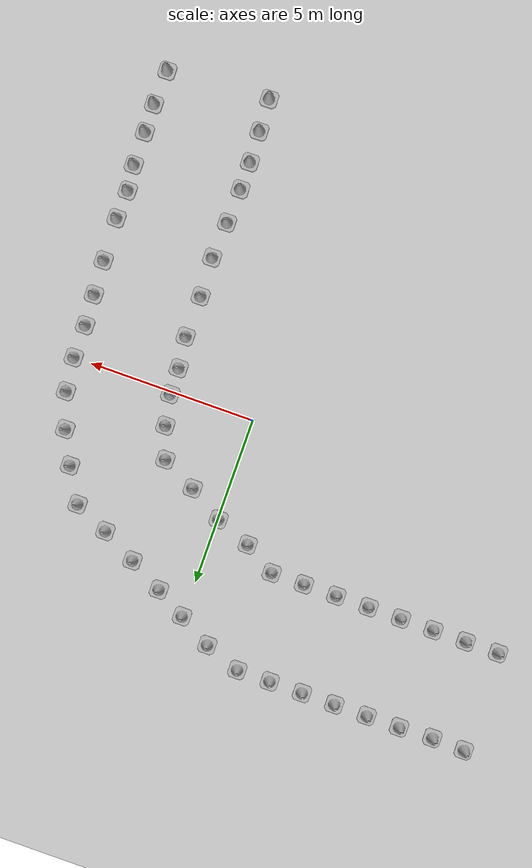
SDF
<sdf version="1.7">
 <world name="empty">
  <plugin name="gazebo_ros_properties" filename="libgazebo_ros_properties.so">
   <ros><namespace>/erp42</namespace></ros>
  </plugin>
  <model name="ground_plane">
   <static>1</static>
   <link name="link">
    <collision name="collision">
     <geometry><plane><normal>0 0 1</normal><size>100 100</size></plane></geometry>
     <surface>
      <contact><collide_bitmask>65535</collide_bitmask></contact>
      <friction><ode><mu>100</mu><mu2>50</mu2></ode></friction>
     </surface>
    </collision>
    <visual name="visual">
     <cast_shadows>0</cast_shadows>
     <geometry><plane><normal>0 0 1</normal><size>100 100</size></plane></geometry>
     <material>
      <script><uri>file://media/materials/scripts/gazebo.material</uri><name>Gazebo/Grey</name></script>
     </material>
    </visual>
   </link>
  </model>
  <light name="sun" type="directional">
   <pose>0 0 10 0 -0 0</pose>
   <diffuse>0.8 0.8 0.8 1</diffuse>
   <specular>0.2 0.2 0.2 1</specular>
   <attenuation>
    <range>1000</range>
    <constant>0.9</constant>
    <linear>0.01</linear>
    <quadratic>0.001</quadratic>
   </attenuation>
   <direction>-0.5 0.1 -0.9</direction>
   <spot><inner_angle>0</inner_angle><outer_angle>0</outer_angle><falloff>0</falloff></spot>
  </light>
  <scene><ambient>0.6 0.6 0.6 1</ambient><shadows>0</shadows><background>0.7 0.7 0.7 1</background></scene>
  <physics name="default_physics" type="ode">
   <max_step_size>0.001</max_step_size>
   <real_time_update_rate>1000</real_time_update_rate>
   <real_time_factor>1</real_time_factor>
  </physics>
  <spherical_coordinates>
   <surface_model>EARTH_WGS84</surface_model>
   <latitude_deg>37.239</latitude_deg>
   <longitude_deg>126.773</longitude_deg>
   <elevation>0</elevation>
   <heading_deg>180</heading_deg>
  </spherical_coordinates>
  <gravity>0 0 -9.8</gravity>
  <magnetic_field>6e-06 2.3e-05 -4.2e-05</magnetic_field>
  <atmosphere type="adiabatic"/>
  <audio><device>default</device></audio>
  <model name="Construction Cone">
   <link name="link">
    <collision name="collision">
     <geometry>
      <mesh><scale>10 10 10</scale><uri>model://construction_cone/meshes/construction_cone.dae</uri></mesh>
     </geometry>
    </collision>
    <visual name="visual">
     <geometry>
      <mesh><scale>10 10 10</scale><uri>model://construction_cone/meshes/construction_cone.dae</uri></mesh>
     </geometry>
    </visual>
    <inertial>
     <inertia><ixx>1</ixx><ixy>0</ixy><ixz>0</ixz><iyy>1</iyy><iyz>0</iyz><izz>1</izz></inertia>
     <mass>1</mass>
    </inertial>
   </link>
   <pose>-9 7 0 -0 -0 -0</pose>
  </model>
  <model name="Construction Cone_clone">
   <link name="link">
    <collision name="collision">
     <geometry>
      <mesh><scale>10 10 10</scale><uri>model://construction_cone/meshes/construction_cone.dae</uri></mesh>
     </geometry>
    </collision>
    <visual name="visual">
     <geometry>
      <mesh><scale>10 10 10</scale><uri>model://construction_cone/meshes/construction_cone.dae</uri></mesh>
     </geometry>
    </visual>
    <inertial>
     <inertia><ixx>1</ixx><ixy>0</ixy><ixz>0</ixz><iyy>1</iyy><iyz>0</iyz><izz>1</izz></inertia>
     <mass>1</mass>
    </inertial>
   </link>
   <pose>-9 4 -0 0 -0 0</pose>
  </model>
  <model name="Construction Cone_clone_0">
   <link name="link">
    <collision name="collision">
     <geometry>
      <mesh><scale>10 10 10</scale><uri>model://construction_cone/meshes/construction_cone.dae</uri></mesh>
     </geometry>
    </collision>
    <visual name="visual">
     <geometry>
      <mesh><scale>10 10 10</scale><uri>model://construction_cone/meshes/construction_cone.dae</uri></mesh>
     </geometry>
    </visual>
    <inertial>
     <inertia><ixx>1</ixx><ixy>0</ixy><ixz>0</ixz><iyy>1</iyy><iyz>0</iyz><izz>1</izz></inertia>
     <mass>1</mass>
    </inertial>
   </link>
   <pose>-8.01544 6.96952 -0 0 -0 0</pose>
  </model>
  <model name="Construction Cone_clone_0_clone">
   <link name="link">
    <collision name="collision">
     <geometry>
      <mesh><scale>10 10 10</scale><uri>model://construction_cone/meshes/construction_cone.dae</uri></mesh>
     </geometry>
    </collision>
    <visual name="visual">
     <geometry>
      <mesh><scale>10 10 10</scale><uri>model://construction_cone/meshes/construction_cone.dae</uri></mesh>
     </geometry>
    </visual>
    <inertial>
     <inertia><ixx>1</ixx><ixy>0</ixy><ixz>0</ixz><iyy>1</iyy><iyz>0</iyz><izz>1</izz></inertia>
     <mass>1</mass>
    </inertial>
   </link>
   <pose>-8 4 -0 0 -0 0</pose>
  </model>
  <model name="Construction Cone_clone_0_clone_0">
   <link name="link">
    <collision name="collision">
     <geometry>
      <mesh><scale>10 10 10</scale><uri>model://construction_cone/meshes/construction_cone.dae</uri></mesh>
     </geometry>
    </collision>
    <visual name="visual">
     <geometry>
      <mesh><scale>10 10 10</scale><uri>model://construction_cone/meshes/construction_cone.dae</uri></mesh>
     </geometry>
    </visual>
    <inertial>
     <inertia><ixx>1</ixx><ixy>0</ixy><ixz>0</ixz><iyy>1</iyy><iyz>0</iyz><izz>1</izz></inertia>
     <mass>1</mass>
    </inertial>
   </link>
   <pose>-7 4 -0 0 -0 0</pose>
  </model>
  <model name="Construction Cone_clone_0_clone_1">
   <link name="link">
    <collision name="collision">
     <geometry>
      <mesh><scale>10 10 10</scale><uri>model://construction_cone/meshes/construction_cone.dae</uri></mesh>
     </geometry>
    </collision>
    <visual name="visual">
     <geometry>
      <mesh><scale>10 10 10</scale><uri>model://construction_cone/meshes/construction_cone.dae</uri></mesh>
     </geometry>
    </visual>
    <inertial>
     <inertia><ixx>1</ixx><ixy>0</ixy><ixz>0</ixz><iyy>1</iyy><iyz>0</iyz><izz>1</izz></inertia>
     <mass>1</mass>
    </inertial>
   </link>
   <pose>-6 4 -0 1e-06 -0 0</pose>
  </model>
  <model name="Construction Cone_clone_0_clone_2">
   <link name="link">
    <collision name="collision">
     <geometry>
      <mesh><scale>10 10 10</scale><uri>model://construction_cone/meshes/construction_cone.dae</uri></mesh>
     </geometry>
    </collision>
    <visual name="visual">
     <geometry>
      <mesh><scale>10 10 10</scale><uri>model://construction_cone/meshes/construction_cone.dae</uri></mesh>
     </geometry>
    </visual>
    <inertial>
     <inertia><ixx>1</ixx><ixy>0</ixy><ixz>0</ixz><iyy>1</iyy><iyz>0</iyz><izz>1</izz></inertia>
     <mass>1</mass>
    </inertial>
   </link>
   <pose>-5 4 -0 0 -0 0</pose>
  </model>
  <model name="Construction Cone_clone_0_clone_3">
   <link name="link">
    <collision name="collision">
     <geometry>
      <mesh><scale>10 10 10</scale><uri>model://construction_cone/meshes/construction_cone.dae</uri></mesh>
     </geometry>
    </collision>
    <visual name="visual">
     <geometry>
      <mesh><scale>10 10 10</scale><uri>model://construction_cone/meshes/construction_cone.dae</uri></mesh>
     </geometry>
    </visual>
    <inertial>
     <inertia><ixx>1</ixx><ixy>0</ixy><ixz>0</ixz><iyy>1</iyy><iyz>0</iyz><izz>1</izz></inertia>
     <mass>1</mass>
    </inertial>
   </link>
   <pose>-4 4 -0 0 -0 0</pose>
  </model>
  <model name="Construction Cone_clone_0_clone_4">
   <link name="link">
    <collision name="collision">
     <geometry>
      <mesh><scale>10 10 10</scale><uri>model://construction_cone/meshes/construction_cone.dae</uri></mesh>
     </geometry>
    </collision>
    <visual name="visual">
     <geometry>
      <mesh><scale>10 10 10</scale><uri>model://construction_cone/meshes/construction_cone.dae</uri></mesh>
     </geometry>
    </visual>
    <inertial>
     <inertia><ixx>1</ixx><ixy>0</ixy><ixz>0</ixz><iyy>1</iyy><iyz>0</iyz><izz>1</izz></inertia>
     <mass>1</mass>
    </inertial>
   </link>
   <pose>-3 4 -6e-06 -4e-06 0 0</pose>
  </model>
  <model name="Construction Cone_clone_0_clone_5">
   <link name="link">
    <collision name="collision">
     <geometry>
      <mesh><scale>10 10 10</scale><uri>model://construction_cone/meshes/construction_cone.dae</uri></mesh>
     </geometry>
    </collision>
    <visual name="visual">
     <geometry>
      <mesh><scale>10 10 10</scale><uri>model://construction_cone/meshes/construction_cone.dae</uri></mesh>
     </geometry>
    </visual>
    <inertial>
     <inertia><ixx>1</ixx><ixy>0</ixy><ixz>0</ixz><iyy>1</iyy><iyz>0</iyz><izz>1</izz></inertia>
     <mass>1</mass>
    </inertial>
   </link>
   <pose>-2 4 -0 0 -0 0</pose>
  </model>
  <model name="Construction Cone_clone_0_clone_6">
   <link name="link">
    <collision name="collision">
     <geometry>
      <mesh><scale>10 10 10</scale><uri>model://construction_cone/meshes/construction_cone.dae</uri></mesh>
     </geometry>
    </collision>
    <visual name="visual">
     <geometry>
      <mesh><scale>10 10 10</scale><uri>model://construction_cone/meshes/construction_cone.dae</uri></mesh>
     </geometry>
    </visual>
    <inertial>
     <inertia><ixx>1</ixx><ixy>0</ixy><ixz>0</ixz><iyy>1</iyy><iyz>0</iyz><izz>1</izz></inertia>
     <mass>1</mass>
    </inertial>
   </link>
   <pose>-7 7 -0 0 -0 0</pose>
  </model>
  <model name="Construction Cone_clone_0_clone_7">
   <link name="link">
    <collision name="collision">
     <geometry>
      <mesh><scale>10 10 10</scale><uri>model://construction_cone/meshes/construction_cone.dae</uri></mesh>
     </geometry>
    </collision>
    <visual name="visual">
     <geometry>
      <mesh><scale>10 10 10</scale><uri>model://construction_cone/meshes/construction_cone.dae</uri></mesh>
     </geometry>
    </visual>
    <inertial>
     <inertia><ixx>1</ixx><ixy>0</ixy><ixz>0</ixz><iyy>1</iyy><iyz>0</iyz><izz>1</izz></inertia>
     <mass>1</mass>
    </inertial>
   </link>
   <pose>-6 7 -0 1e-06 -0 0</pose>
  </model>
  <model name="Construction Cone_clone_0_clone_8">
   <link name="link">
    <collision name="collision">
     <geometry>
      <mesh><scale>10 10 10</scale><uri>model://construction_cone/meshes/construction_cone.dae</uri></mesh>
     </geometry>
    </collision>
    <visual name="visual">
     <geometry>
      <mesh><scale>10 10 10</scale><uri>model://construction_cone/meshes/construction_cone.dae</uri></mesh>
     </geometry>
    </visual>
    <inertial>
     <inertia><ixx>1</ixx><ixy>0</ixy><ixz>0</ixz><iyy>1</iyy><iyz>0</iyz><izz>1</izz></inertia>
     <mass>1</mass>
    </inertial>
   </link>
   <pose>-5 7 -0 0 -0 0</pose>
  </model>
  <model name="Construction Cone_clone_0_clone_9">
   <link name="link">
    <collision name="collision">
     <geometry>
      <mesh><scale>10 10 10</scale><uri>model://construction_cone/meshes/construction_cone.dae</uri></mesh>
     </geometry>
    </collision>
    <visual name="visual">
     <geometry>
      <mesh><scale>10 10 10</scale><uri>model://construction_cone/meshes/construction_cone.dae</uri></mesh>
     </geometry>
    </visual>
    <inertial>
     <inertia><ixx>1</ixx><ixy>0</ixy><ixz>0</ixz><iyy>1</iyy><iyz>0</iyz><izz>1</izz></inertia>
     <mass>1</mass>
    </inertial>
   </link>
   <pose>-4 7 -1e-05 -1e-06 0 0</pose>
  </model>
  <model name="Construction Cone_clone_0_clone_10">
   <link name="link">
    <collision name="collision">
     <geometry>
      <mesh><scale>10 10 10</scale><uri>model://construction_cone/meshes/construction_cone.dae</uri></mesh>
     </geometry>
    </collision>
    <visual name="visual">
     <geometry>
      <mesh><scale>10 10 10</scale><uri>model://construction_cone/meshes/construction_cone.dae</uri></mesh>
     </geometry>
    </visual>
    <inertial>
     <inertia><ixx>1</ixx><ixy>0</ixy><ixz>0</ixz><iyy>1</iyy><iyz>0</iyz><izz>1</izz></inertia>
     <mass>1</mass>
    </inertial>
   </link>
   <pose>-3 7 -0 0 -0 0</pose>
  </model>
  <model name="Construction Cone_clone_0_clone_11">
   <link name="link">
    <collision name="collision">
     <geometry>
      <mesh><scale>10 10 10</scale><uri>model://construction_cone/meshes/construction_cone.dae</uri></mesh>
     </geometry>
    </collision>
    <visual name="visual">
     <geometry>
      <mesh><scale>10 10 10</scale><uri>model://construction_cone/meshes/construction_cone.dae</uri></mesh>
     </geometry>
    </visual>
    <inertial>
     <inertia><ixx>1</ixx><ixy>0</ixy><ixz>0</ixz><iyy>1</iyy><iyz>0</iyz><izz>1</izz></inertia>
     <mass>1</mass>
    </inertial>
   </link>
   <pose>-2 7 -0 0 -0 0</pose>
  </model>
  <model name="Construction Cone_clone_0_clone_11_clone">
   <link name="link">
    <collision name="collision">
     <geometry>
      <mesh><scale>10 10 10</scale><uri>model://construction_cone/meshes/construction_cone.dae</uri></mesh>
     </geometry>
    </collision>
    <visual name="visual">
     <geometry>
      <mesh><scale>10 10 10</scale><uri>model://construction_cone/meshes/construction_cone.dae</uri></mesh>
     </geometry>
    </visual>
    <inertial>
     <inertia><ixx>1</ixx><ixy>0</ixy><ixz>0</ixz><iyy>1</iyy><iyz>0</iyz><izz>1</izz></inertia>
     <mass>1</mass>
    </inertial>
   </link>
   <pose>-0.933051 6.60667 -1e-05 -1e-06 0 0</pose>
  </model>
  <model name="Construction Cone_clone_0_clone_11_clone_0">
   <link name="link">
    <collision name="collision">
     <geometry>
      <mesh><scale>10 10 10</scale><uri>model://construction_cone/meshes/construction_cone.dae</uri></mesh>
     </geometry>
    </collision>
    <visual name="visual">
     <geometry>
      <mesh><scale>10 10 10</scale><uri>model://construction_cone/meshes/construction_cone.dae</uri></mesh>
     </geometry>
    </visual>
    <inertial>
     <inertia><ixx>1</ixx><ixy>0</ixy><ixz>0</ixz><iyy>1</iyy><iyz>0</iyz><izz>1</izz></inertia>
     <mass>1</mass>
    </inertial>
   </link>
   <pose>0.039005 6.06231 -0 0 -0 0</pose>
  </model>
  <model name="Construction Cone_clone_0_clone_11_clone_1">
   <link name="link">
    <collision name="collision">
     <geometry>
      <mesh><scale>10 10 10</scale><uri>model://construction_cone/meshes/construction_cone.dae</uri></mesh>
     </geometry>
    </collision>
    <visual name="visual">
     <geometry>
      <mesh><scale>10 10 10</scale><uri>model://construction_cone/meshes/construction_cone.dae</uri></mesh>
     </geometry>
    </visual>
    <inertial>
     <inertia><ixx>1</ixx><ixy>0</ixy><ixz>0</ixz><iyy>1</iyy><iyz>0</iyz><izz>1</izz></inertia>
     <mass>1</mass>
    </inertial>
   </link>
   <pose>0.933307 5.55684 -0 0 -0 0</pose>
  </model>
  <model name="Construction Cone_clone_0_clone_11_clone_2">
   <link name="link">
    <collision name="collision">
     <geometry>
      <mesh><scale>10 10 10</scale><uri>model://construction_cone/meshes/construction_cone.dae</uri></mesh>
     </geometry>
    </collision>
    <visual name="visual">
     <geometry>
      <mesh><scale>10 10 10</scale><uri>model://construction_cone/meshes/construction_cone.dae</uri></mesh>
     </geometry>
    </visual>
    <inertial>
     <inertia><ixx>1</ixx><ixy>0</ixy><ixz>0</ixz><iyy>1</iyy><iyz>0</iyz><izz>1</izz></inertia>
     <mass>1</mass>
    </inertial>
   </link>
   <pose>1.94424 5.01249 -0 0 -0 0</pose>
  </model>
  <model name="Construction Cone_clone_0_clone_11_clone_3">
   <link name="link">
    <collision name="collision">
     <geometry>
      <mesh><scale>10 10 10</scale><uri>model://construction_cone/meshes/construction_cone.dae</uri></mesh>
     </geometry>
    </collision>
    <visual name="visual">
     <geometry>
      <mesh><scale>10 10 10</scale><uri>model://construction_cone/meshes/construction_cone.dae</uri></mesh>
     </geometry>
    </visual>
    <inertial>
     <inertia><ixx>1</ixx><ixy>0</ixy><ixz>0</ixz><iyy>1</iyy><iyz>0</iyz><izz>1</izz></inertia>
     <mass>1</mass>
    </inertial>
   </link>
   <pose>2.97463 4.46814 -0 0 -1e-06 0</pose>
  </model>
  <model name="Construction Cone_clone_0_clone_11_clone_4">
   <link name="link">
    <collision name="collision">
     <geometry>
      <mesh><scale>10 10 10</scale><uri>model://construction_cone/meshes/construction_cone.dae</uri></mesh>
     </geometry>
    </collision>
    <visual name="visual">
     <geometry>
      <mesh><scale>10 10 10</scale><uri>model://construction_cone/meshes/construction_cone.dae</uri></mesh>
     </geometry>
    </visual>
    <inertial>
     <inertia><ixx>1</ixx><ixy>0</ixy><ixz>0</ixz><iyy>1</iyy><iyz>0</iyz><izz>1</izz></inertia>
     <mass>1</mass>
    </inertial>
   </link>
   <pose>4 4 -6e-06 5e-06 1e-06 0</pose>
  </model>
  <model name="Construction Cone_clone_0_clone_11_clone_5">
   <link name="link">
    <collision name="collision">
     <geometry>
      <mesh><scale>10 10 10</scale><uri>model://construction_cone/meshes/construction_cone.dae</uri></mesh>
     </geometry>
    </collision>
    <visual name="visual">
     <geometry>
      <mesh><scale>10 10 10</scale><uri>model://construction_cone/meshes/construction_cone.dae</uri></mesh>
     </geometry>
    </visual>
    <inertial>
     <inertia><ixx>1</ixx><ixy>0</ixy><ixz>0</ixz><iyy>1</iyy><iyz>0</iyz><izz>1</izz></inertia>
     <mass>1</mass>
    </inertial>
   </link>
   <pose>4.58784 3.00927 -0 0 -0 0</pose>
  </model>
  <model name="Construction Cone_clone_0_clone_11_clone_6">
   <link name="link">
    <collision name="collision">
     <geometry>
      <mesh><scale>10 10 10</scale><uri>model://construction_cone/meshes/construction_cone.dae</uri></mesh>
     </geometry>
    </collision>
    <visual name="visual">
     <geometry>
      <mesh><scale>10 10 10</scale><uri>model://construction_cone/meshes/construction_cone.dae</uri></mesh>
     </geometry>
    </visual>
    <inertial>
     <inertia><ixx>1</ixx><ixy>0</ixy><ixz>0</ixz><iyy>1</iyy><iyz>0</iyz><izz>1</izz></inertia>
     <mass>1</mass>
    </inertial>
   </link>
   <pose>5.07388 2.05665 -0 1e-06 -0 0</pose>
  </model>
  <model name="Construction Cone_clone_0_clone_11_clone_7">
   <link name="link">
    <collision name="collision">
     <geometry>
      <mesh><scale>10 10 10</scale><uri>model://construction_cone/meshes/construction_cone.dae</uri></mesh>
     </geometry>
    </collision>
    <visual name="visual">
     <geometry>
      <mesh><scale>10 10 10</scale><uri>model://construction_cone/meshes/construction_cone.dae</uri></mesh>
     </geometry>
    </visual>
    <inertial>
     <inertia><ixx>1</ixx><ixy>0</ixy><ixz>0</ixz><iyy>1</iyy><iyz>0</iyz><izz>1</izz></inertia>
     <mass>1</mass>
    </inertial>
   </link>
   <pose>5.42382 1.00683 -0 0 -0 0</pose>
  </model>
  <model name="Construction Cone_clone_0_clone_11_clone_8">
   <link name="link">
    <collision name="collision">
     <geometry>
      <mesh><scale>10 10 10</scale><uri>model://construction_cone/meshes/construction_cone.dae</uri></mesh>
     </geometry>
    </collision>
    <visual name="visual">
     <geometry>
      <mesh><scale>10 10 10</scale><uri>model://construction_cone/meshes/construction_cone.dae</uri></mesh>
     </geometry>
    </visual>
    <inertial>
     <inertia><ixx>1</ixx><ixy>0</ixy><ixz>0</ixz><iyy>1</iyy><iyz>0</iyz><izz>1</izz></inertia>
     <mass>1</mass>
    </inertial>
   </link>
   <pose>5.54046 0 -0 0 -0 0</pose>
  </model>
  <model name="Construction Cone_clone_0_clone_11_clone_9">
   <link name="link">
    <collision name="collision">
     <geometry>
      <mesh><scale>10 10 10</scale><uri>model://construction_cone/meshes/construction_cone.dae</uri></mesh>
     </geometry>
    </collision>
    <visual name="visual">
     <geometry>
      <mesh><scale>10 10 10</scale><uri>model://construction_cone/meshes/construction_cone.dae</uri></mesh>
     </geometry>
    </visual>
    <inertial>
     <inertia><ixx>1</ixx><ixy>0</ixy><ixz>0</ixz><iyy>1</iyy><iyz>0</iyz><izz>1</izz></inertia>
     <mass>1</mass>
    </inertial>
   </link>
   <pose>5.54046 -0.995616 -0 0 -0 0</pose>
  </model>
  <model name="Construction Cone_clone_0_clone_11_clone_10">
   <link name="link">
    <collision name="collision">
     <geometry>
      <mesh><scale>10 10 10</scale><uri>model://construction_cone/meshes/construction_cone.dae</uri></mesh>
     </geometry>
    </collision>
    <visual name="visual">
     <geometry>
      <mesh><scale>10 10 10</scale><uri>model://construction_cone/meshes/construction_cone.dae</uri></mesh>
     </geometry>
    </visual>
    <inertial>
     <inertia><ixx>1</ixx><ixy>0</ixy><ixz>0</ixz><iyy>1</iyy><iyz>0</iyz><izz>1</izz></inertia>
     <mass>1</mass>
    </inertial>
   </link>
   <pose>5.59879 -1.9288 -0 0 -0 0</pose>
  </model>
  <model name="Construction Cone_clone_0_clone_11_clone_11">
   <link name="link">
    <collision name="collision">
     <geometry>
      <mesh><scale>10 10 10</scale><uri>model://construction_cone/meshes/construction_cone.dae</uri></mesh>
     </geometry>
    </collision>
    <visual name="visual">
     <geometry>
      <mesh><scale>10 10 10</scale><uri>model://construction_cone/meshes/construction_cone.dae</uri></mesh>
     </geometry>
    </visual>
    <inertial>
     <inertia><ixx>1</ixx><ixy>0</ixy><ixz>0</ixz><iyy>1</iyy><iyz>0</iyz><izz>1</izz></inertia>
     <mass>1</mass>
    </inertial>
   </link>
   <pose>-1.06953 3.45642 -0 0 -0 0</pose>
  </model>
  <model name="Construction Cone_clone_0_clone_11_clone_12">
   <link name="link">
    <collision name="collision">
     <geometry>
      <mesh><scale>10 10 10</scale><uri>model://construction_cone/meshes/construction_cone.dae</uri></mesh>
     </geometry>
    </collision>
    <visual name="visual">
     <geometry>
      <mesh><scale>10 10 10</scale><uri>model://construction_cone/meshes/construction_cone.dae</uri></mesh>
     </geometry>
    </visual>
    <inertial>
     <inertia><ixx>1</ixx><ixy>0</ixy><ixz>0</ixz><iyy>1</iyy><iyz>0</iyz><izz>1</izz></inertia>
     <mass>1</mass>
    </inertial>
   </link>
   <pose>-0.019713 3.04815 0 -0 -0 -0</pose>
  </model>
  <model name="Construction Cone_clone_0_clone_11_clone_13">
   <link name="link">
    <collision name="collision">
     <geometry>
      <mesh><scale>10 10 10</scale><uri>model://construction_cone/meshes/construction_cone.dae</uri></mesh>
     </geometry>
    </collision>
    <visual name="visual">
     <geometry>
      <mesh><scale>10 10 10</scale><uri>model://construction_cone/meshes/construction_cone.dae</uri></mesh>
     </geometry>
    </visual>
    <inertial>
     <inertia><ixx>1</ixx><ixy>0</ixy><ixz>0</ixz><iyy>1</iyy><iyz>0</iyz><izz>1</izz></inertia>
     <mass>1</mass>
    </inertial>
   </link>
   <pose>0.991239 2.44548 -0 0 -0 0</pose>
  </model>
  <model name="Construction Cone_clone_0_clone_11_clone_14">
   <link name="link">
    <collision name="collision">
     <geometry>
      <mesh><scale>10 10 10</scale><uri>model://construction_cone/meshes/construction_cone.dae</uri></mesh>
     </geometry>
    </collision>
    <visual name="visual">
     <geometry>
      <mesh><scale>10 10 10</scale><uri>model://construction_cone/meshes/construction_cone.dae</uri></mesh>
     </geometry>
    </visual>
    <inertial>
     <inertia><ixx>1</ixx><ixy>0</ixy><ixz>0</ixz><iyy>1</iyy><iyz>0</iyz><izz>1</izz></inertia>
     <mass>1</mass>
    </inertial>
   </link>
   <pose>2.02162 1.92056 -1e-05 -1e-06 0 0</pose>
  </model>
  <model name="Construction Cone_clone_0_clone_11_clone_15">
   <link name="link">
    <collision name="collision">
     <geometry>
      <mesh><scale>10 10 10</scale><uri>model://construction_cone/meshes/construction_cone.dae</uri></mesh>
     </geometry>
    </collision>
    <visual name="visual">
     <geometry>
      <mesh><scale>10 10 10</scale><uri>model://construction_cone/meshes/construction_cone.dae</uri></mesh>
     </geometry>
    </visual>
    <inertial>
     <inertia><ixx>1</ixx><ixy>0</ixy><ixz>0</ixz><iyy>1</iyy><iyz>0</iyz><izz>1</izz></inertia>
     <mass>1</mass>
    </inertial>
   </link>
   <pose>2.35211 0.987385 -0 1e-06 -0 0</pose>
  </model>
  <model name="Construction Cone_clone_0_clone_11_clone_16">
   <link name="link">
    <collision name="collision">
     <geometry>
      <mesh><scale>10 10 10</scale><uri>model://construction_cone/meshes/construction_cone.dae</uri></mesh>
     </geometry>
    </collision>
    <visual name="visual">
     <geometry>
      <mesh><scale>10 10 10</scale><uri>model://construction_cone/meshes/construction_cone.dae</uri></mesh>
     </geometry>
    </visual>
    <inertial>
     <inertia><ixx>1</ixx><ixy>0</ixy><ixz>0</ixz><iyy>1</iyy><iyz>0</iyz><izz>1</izz></inertia>
     <mass>1</mass>
    </inertial>
   </link>
   <pose>2.52709 0.074122 -0 0 -0 0</pose>
  </model>
  <model name="Construction Cone_clone_0_clone_11_clone_17">
   <link name="link">
    <collision name="collision">
     <geometry>
      <mesh><scale>10 10 10</scale><uri>model://construction_cone/meshes/construction_cone.dae</uri></mesh>
     </geometry>
    </collision>
    <visual name="visual">
     <geometry>
      <mesh><scale>10 10 10</scale><uri>model://construction_cone/meshes/construction_cone.dae</uri></mesh>
     </geometry>
    </visual>
    <inertial>
     <inertia><ixx>1</ixx><ixy>0</ixy><ixz>0</ixz><iyy>1</iyy><iyz>0</iyz><izz>1</izz></inertia>
     <mass>1</mass>
    </inertial>
   </link>
   <pose>2.54653 -0.722966 -0 0 -1e-06 0</pose>
  </model>
  <model name="Construction Cone_clone_0_clone_11_clone_18">
   <link name="link">
    <collision name="collision">
     <geometry>
      <mesh><scale>10 10 10</scale><uri>model://construction_cone/meshes/construction_cone.dae</uri></mesh>
     </geometry>
    </collision>
    <visual name="visual">
     <geometry>
      <mesh><scale>10 10 10</scale><uri>model://construction_cone/meshes/construction_cone.dae</uri></mesh>
     </geometry>
    </visual>
    <inertial>
     <inertia><ixx>1</ixx><ixy>0</ixy><ixz>0</ixz><iyy>1</iyy><iyz>0</iyz><izz>1</izz></inertia>
     <mass>1</mass>
    </inertial>
   </link>
   <pose>2.66468 -1.66135 -0 1e-06 -0 0</pose>
  </model>
  <model name="Construction Cone_clone_0_clone_11_clone_19">
   <link name="link">
    <collision name="collision">
     <geometry>
      <mesh><scale>10 10 10</scale><uri>model://construction_cone/meshes/construction_cone.dae</uri></mesh>
     </geometry>
    </collision>
    <visual name="visual">
     <geometry>
      <mesh><scale>10 10 10</scale><uri>model://construction_cone/meshes/construction_cone.dae</uri></mesh>
     </geometry>
    </visual>
    <inertial>
     <inertia><ixx>1</ixx><ixy>0</ixy><ixz>0</ixz><iyy>1</iyy><iyz>0</iyz><izz>1</izz></inertia>
     <mass>1</mass>
    </inertial>
   </link>
   <pose>2.64507 -2.91632 -0 0 -0 0</pose>
  </model>
  <model name="Construction Cone_clone_0_clone_11_clone_20">
   <link name="link">
    <collision name="collision">
     <geometry>
      <mesh><scale>10 10 10</scale><uri>model://construction_cone/meshes/construction_cone.dae</uri></mesh>
     </geometry>
    </collision>
    <visual name="visual">
     <geometry>
      <mesh><scale>10 10 10</scale><uri>model://construction_cone/meshes/construction_cone.dae</uri></mesh>
     </geometry>
    </visual>
    <inertial>
     <inertia><ixx>1</ixx><ixy>0</ixy><ixz>0</ixz><iyy>1</iyy><iyz>0</iyz><izz>1</izz></inertia>
     <mass>1</mass>
    </inertial>
   </link>
   <pose>2.7039 -4.09287 -0 0 -0 0</pose>
  </model>
  <model name="Construction Cone_clone_0_clone_11_clone_21">
   <link name="link">
    <collision name="collision">
     <geometry>
      <mesh><scale>10 10 10</scale><uri>model://construction_cone/meshes/construction_cone.dae</uri></mesh>
     </geometry>
    </collision>
    <visual name="visual">
     <geometry>
      <mesh><scale>10 10 10</scale><uri>model://construction_cone/meshes/construction_cone.dae</uri></mesh>
     </geometry>
    </visual>
    <inertial>
     <inertia><ixx>1</ixx><ixy>0</ixy><ixz>0</ixz><iyy>1</iyy><iyz>0</iyz><izz>1</izz></inertia>
     <mass>1</mass>
    </inertial>
   </link>
   <pose>5.66663 -2.96079 -0 0 -0 0</pose>
  </model>
  <model name="Construction Cone_clone_0_clone_11_clone_21_clone">
   <link name="link">
    <collision name="collision">
     <geometry>
      <mesh><scale>10 10 10</scale><uri>model://construction_cone/meshes/construction_cone.dae</uri></mesh>
     </geometry>
    </collision>
    <visual name="visual">
     <geometry>
      <mesh><scale>10 10 10</scale><uri>model://construction_cone/meshes/construction_cone.dae</uri></mesh>
     </geometry>
    </visual>
    <inertial>
     <inertia><ixx>1</ixx><ixy>0</ixy><ixz>0</ixz><iyy>1</iyy><iyz>0</iyz><izz>1</izz></inertia>
     <mass>1</mass>
    </inertial>
   </link>
   <pose>5.72369 -4.24974 -0 1e-06 -0 0</pose>
  </model>
  <model name="Construction Cone_clone_0_clone_11_clone_21_clone_0">
   <link name="link">
    <collision name="collision">
     <geometry>
      <mesh><scale>10 10 10</scale><uri>model://construction_cone/meshes/construction_cone.dae</uri></mesh>
     </geometry>
    </collision>
    <visual name="visual">
     <geometry>
      <mesh><scale>10 10 10</scale><uri>model://construction_cone/meshes/construction_cone.dae</uri></mesh>
     </geometry>
    </visual>
    <inertial>
     <inertia><ixx>1</ixx><ixy>0</ixy><ixz>0</ixz><iyy>1</iyy><iyz>0</iyz><izz>1</izz></inertia>
     <mass>1</mass>
    </inertial>
   </link>
   <pose>5.76982 -5.89107 -0 0 -0 0</pose>
  </model>
  <model name="Construction Cone_clone_0_clone_11_clone_21_clone_1">
   <link name="link">
    <collision name="collision">
     <geometry>
      <mesh><scale>10 10 10</scale><uri>model://construction_cone/meshes/construction_cone.dae</uri></mesh>
     </geometry>
    </collision>
    <visual name="visual">
     <geometry>
      <mesh><scale>10 10 10</scale><uri>model://construction_cone/meshes/construction_cone.dae</uri></mesh>
     </geometry>
    </visual>
    <inertial>
     <inertia><ixx>1</ixx><ixy>0</ixy><ixz>0</ixz><iyy>1</iyy><iyz>0</iyz><izz>1</izz></inertia>
     <mass>1</mass>
    </inertial>
   </link>
   <pose>5.68591 -5.12177 -0 0 -1e-06 0</pose>
  </model>
  <model name="Construction Cone_clone_0_clone_11_clone_21_clone_2">
   <link name="link">
    <collision name="collision">
     <geometry>
      <mesh><scale>10 10 10</scale><uri>model://construction_cone/meshes/construction_cone.dae</uri></mesh>
     </geometry>
    </collision>
    <visual name="visual">
     <geometry>
      <mesh><scale>10 10 10</scale><uri>model://construction_cone/meshes/construction_cone.dae</uri></mesh>
     </geometry>
    </visual>
    <inertial>
     <inertia><ixx>1</ixx><ixy>0</ixy><ixz>0</ixz><iyy>1</iyy><iyz>0</iyz><izz>1</izz></inertia>
     <mass>1</mass>
    </inertial>
   </link>
   <pose>2.63548 -5.20341 -0 0 -0 0.023669</pose>
  </model>
  <model name="Construction Cone_clone_0_clone_11_clone_21_clone_2_clone">
   <link name="link">
    <collision name="collision">
     <geometry>
      <mesh><scale>10 10 10</scale><uri>model://construction_cone/meshes/construction_cone.dae</uri></mesh>
     </geometry>
    </collision>
    <visual name="visual">
     <geometry>
      <mesh><scale>10 10 10</scale><uri>model://construction_cone/meshes/construction_cone.dae</uri></mesh>
     </geometry>
    </visual>
    <inertial>
     <inertia><ixx>1</ixx><ixy>0</ixy><ixz>0</ixz><iyy>1</iyy><iyz>0</iyz><izz>1</izz></inertia>
     <mass>1</mass>
    </inertial>
   </link>
   <pose>2.59497 -6.25161 -0 0 -0 0.023669</pose>
  </model>
  <model name="Construction Cone_clone_0_clone_11_clone_21_clone_2_clone_0">
   <link name="link">
    <collision name="collision">
     <geometry>
      <mesh><scale>10 10 10</scale><uri>model://construction_cone/meshes/construction_cone.dae</uri></mesh>
     </geometry>
    </collision>
    <visual name="visual">
     <geometry>
      <mesh><scale>10 10 10</scale><uri>model://construction_cone/meshes/construction_cone.dae</uri></mesh>
     </geometry>
    </visual>
    <inertial>
     <inertia><ixx>1</ixx><ixy>0</ixy><ixz>0</ixz><iyy>1</iyy><iyz>0</iyz><izz>1</izz></inertia>
     <mass>1</mass>
    </inertial>
   </link>
   <pose>5.78476 -6.90219 -0 0 -0 0.023669</pose>
  </model>
  <model name="Construction Cone_clone_0_clone_11_clone_21_clone_2_clone_1">
   <link name="link">
    <collision name="collision">
     <geometry>
      <mesh><scale>10 10 10</scale><uri>model://construction_cone/meshes/construction_cone.dae</uri></mesh>
     </geometry>
    </collision>
    <visual name="visual">
     <geometry>
      <mesh><scale>10 10 10</scale><uri>model://construction_cone/meshes/construction_cone.dae</uri></mesh>
     </geometry>
    </visual>
    <inertial>
     <inertia><ixx>1</ixx><ixy>0</ixy><ixz>0</ixz><iyy>1</iyy><iyz>0</iyz><izz>1</izz></inertia>
     <mass>1</mass>
    </inertial>
   </link>
   <pose>2.59497 -7.09106 -1e-06 2e-06 2e-06 0.023669</pose>
  </model>
  <model name="Construction Cone_clone_0_clone_11_clone_21_clone_2_clone_2">
   <link name="link">
    <collision name="collision">
     <geometry>
      <mesh><scale>10 10 10</scale><uri>model://construction_cone/meshes/construction_cone.dae</uri></mesh>
     </geometry>
    </collision>
    <visual name="visual">
     <geometry>
      <mesh><scale>10 10 10</scale><uri>model://construction_cone/meshes/construction_cone.dae</uri></mesh>
     </geometry>
    </visual>
    <inertial>
     <inertia><ixx>1</ixx><ixy>0</ixy><ixz>0</ixz><iyy>1</iyy><iyz>0</iyz><izz>1</izz></inertia>
     <mass>1</mass>
    </inertial>
   </link>
   <pose>5.80575 -7.7626 -0 0 -0 0.023669</pose>
  </model>
  <model name="Construction Cone_clone_0_clone_11_clone_21_clone_2_clone_3">
   <link name="link">
    <collision name="collision">
     <geometry>
      <mesh><scale>10 10 10</scale><uri>model://construction_cone/meshes/construction_cone.dae</uri></mesh>
     </geometry>
    </collision>
    <visual name="visual">
     <geometry>
      <mesh><scale>10 10 10</scale><uri>model://construction_cone/meshes/construction_cone.dae</uri></mesh>
     </geometry>
    </visual>
    <inertial>
     <inertia><ixx>1</ixx><ixy>0</ixy><ixz>0</ixz><iyy>1</iyy><iyz>0</iyz><izz>1</izz></inertia>
     <mass>1</mass>
    </inertial>
   </link>
   <pose>2.63693 -8.0354 -0 0 -0 0.023669</pose>
  </model>
  <model name="Construction Cone_clone_0_clone_11_clone_21_clone_2_clone_4">
   <link name="link">
    <collision name="collision">
     <geometry>
      <mesh><scale>10 10 10</scale><uri>model://construction_cone/meshes/construction_cone.dae</uri></mesh>
     </geometry>
    </collision>
    <visual name="visual">
     <geometry>
      <mesh><scale>10 10 10</scale><uri>model://construction_cone/meshes/construction_cone.dae</uri></mesh>
     </geometry>
    </visual>
    <inertial>
     <inertia><ixx>1</ixx><ixy>0</ixy><ixz>0</ixz><iyy>1</iyy><iyz>0</iyz><izz>1</izz></inertia>
     <mass>1</mass>
    </inertial>
   </link>
   <pose>5.76379 -8.8119 -0 0 -0 0.023669</pose>
  </model>
  <model name="Construction Cone_clone_0_clone_11_clone_21_clone_2_clone_5">
   <link name="link">
    <collision name="collision">
     <geometry>
      <mesh><scale>10 10 10</scale><uri>model://construction_cone/meshes/construction_cone.dae</uri></mesh>
     </geometry>
    </collision>
    <visual name="visual">
     <geometry>
      <mesh><scale>10 10 10</scale><uri>model://construction_cone/meshes/construction_cone.dae</uri></mesh>
     </geometry>
    </visual>
    <inertial>
     <inertia><ixx>1</ixx><ixy>0</ixy><ixz>0</ixz><iyy>1</iyy><iyz>0</iyz><izz>1</izz></inertia>
     <mass>1</mass>
    </inertial>
   </link>
   <pose>2.6789 -9.02174 -0 0 -0 0.023669</pose>
  </model>
 </world>
</sdf>
